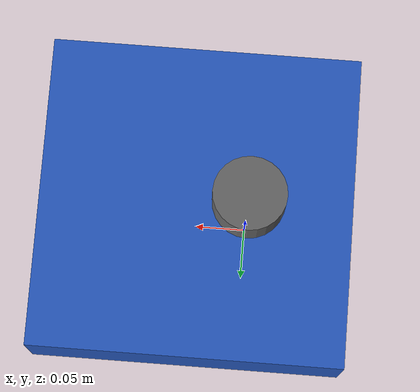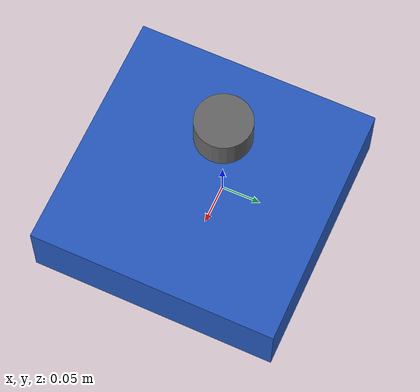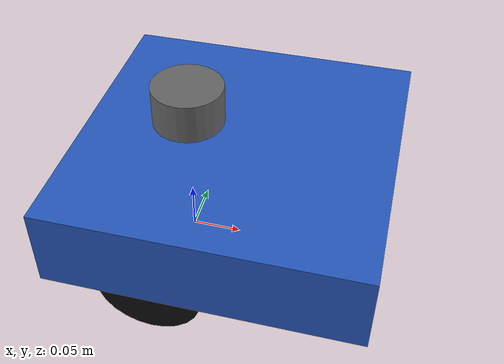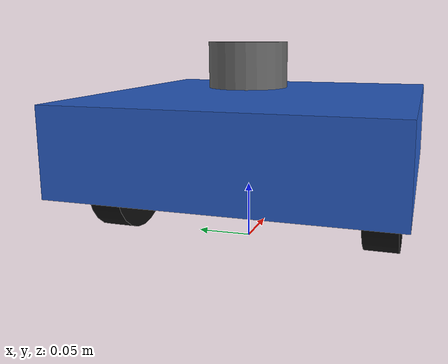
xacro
<?xml version="1.0"?>
<robot xmlns:xacro="http://www.ros.org/wiki/xacro" name="navigation_robot">
  <xacro:arg name="wheel_radius" default="0.05"/>
  <xacro:arg name="wheel_separation" default="0.25"/>
  <xacro:arg name="chassis_front" default="0.20"/>
  <xacro:arg name="chassis_rear" default="0.10"/>
  <xacro:arg name="chassis_left" default="0.15"/>
  <xacro:arg name="chassis_right" default="0.15"/>
  <xacro:arg name="chassis_height" default="0.08"/>
  <xacro:arg name="lidar_x" default="0"/><xacro:arg name="lidar_y" default="0"/><xacro:arg name="lidar_z" default="0.12"/>
  <xacro:arg name="lidar_roll" default="0"/><xacro:arg name="lidar_pitch" default="0"/><xacro:arg name="lidar_yaw" default="0"/>
  <xacro:arg name="camera_x" default="0"/><xacro:arg name="camera_y" default="0"/><xacro:arg name="camera_z" default="0"/>
  <xacro:arg name="camera_roll" default="0"/><xacro:arg name="camera_pitch" default="0"/><xacro:arg name="camera_yaw" default="0"/>
  <xacro:arg name="imu_x" default="0"/><xacro:arg name="imu_y" default="0"/><xacro:arg name="imu_z" default="0"/>
  <xacro:arg name="imu_roll" default="0"/><xacro:arg name="imu_pitch" default="0"/><xacro:arg name="imu_yaw" default="0"/>

  <xacro:property name="r" value="$(arg wheel_radius)"/>
  <xacro:property name="w" value="$(arg wheel_separation)"/>
  <xacro:property name="front" value="$(arg chassis_front)"/>
  <xacro:property name="rear" value="$(arg chassis_rear)"/>
  <xacro:property name="left" value="$(arg chassis_left)"/>
  <xacro:property name="right" value="$(arg chassis_right)"/>
  <xacro:property name="body_height" value="$(arg chassis_height)"/>

  <material name="body_blue"><color rgba="0.15 0.35 0.75 1"/></material>
  <material name="wheel_black"><color rgba="0.05 0.05 0.05 1"/></material>
  <material name="sensor_gray"><color rgba="0.4 0.4 0.4 1"/></material>

  <link name="base_footprint"/>
  <link name="base_link">
    <visual>
      <origin xyz="${(front-rear)/2} 0 ${body_height/2}"/>
      <geometry><box size="${front+rear} ${left+right} ${body_height}"/></geometry>
      <material name="body_blue"/>
    </visual>
  </link>
  <joint name="base_footprint_joint" type="fixed">
    <parent link="base_footprint"/><child link="base_link"/>
    <origin xyz="0 0 ${r}"/>
  </joint>

  <xacro:macro name="drive_wheel" params="side y">
    <link name="${side}_wheel_link">
      <visual>
        <origin rpy="${pi/2} 0 0"/>
        <geometry><cylinder radius="${r}" length="0.03"/></geometry>
        <material name="wheel_black"/>
      </visual>
    </link>
    <joint name="${side}_wheel_joint" type="continuous">
      <parent link="base_link"/><child link="${side}_wheel_link"/>
      <origin xyz="0 ${y} 0"/>
      <axis xyz="0 1 0"/>
    </joint>
  </xacro:macro>
  <xacro:drive_wheel side="left" y="${w/2}"/>
  <xacro:drive_wheel side="right" y="${-w/2}"/>

  <link name="front_caster_link">
    <visual><geometry><sphere radius="0.025"/></geometry><material name="wheel_black"/></visual>
  </link>
  <joint name="front_caster_joint" type="fixed">
    <parent link="base_link"/><child link="front_caster_link"/>
    <origin xyz="${front-0.04} 0 ${-r+0.025}"/>
  </joint>

  <link name="lidar_link">
    <visual>
      <!-- lidar_link is the scan plane; the housing bottom is 0.03 m below it. -->
      <origin xyz="0 0 -0.01"/>
      <geometry><cylinder radius="0.035" length="0.04"/></geometry>
      <material name="sensor_gray"/>
    </visual>
  </link>
  <joint name="lidar_joint" type="fixed">
    <parent link="base_link"/><child link="lidar_link"/>
    <origin xyz="$(arg lidar_x) $(arg lidar_y) $(arg lidar_z)" rpy="$(arg lidar_roll) $(arg lidar_pitch) $(arg lidar_yaw)"/>
  </joint>

  <link name="front_camera_link">
    <visual><geometry><box size="0.08 0.025 0.025"/></geometry><material name="sensor_gray"/></visual>
  </link>
  <joint name="front_camera_joint" type="fixed">
    <parent link="base_link"/><child link="front_camera_link"/>
    <origin xyz="$(arg camera_x) $(arg camera_y) $(arg camera_z)" rpy="$(arg camera_roll) $(arg camera_pitch) $(arg camera_yaw)"/>
  </joint>

  <link name="imu_link"/>
  <joint name="imu_joint" type="fixed">
    <parent link="base_link"/><child link="imu_link"/>
    <origin xyz="$(arg imu_x) $(arg imu_y) $(arg imu_z)" rpy="$(arg imu_roll) $(arg imu_pitch) $(arg imu_yaw)"/>
  </joint>
</robot>
